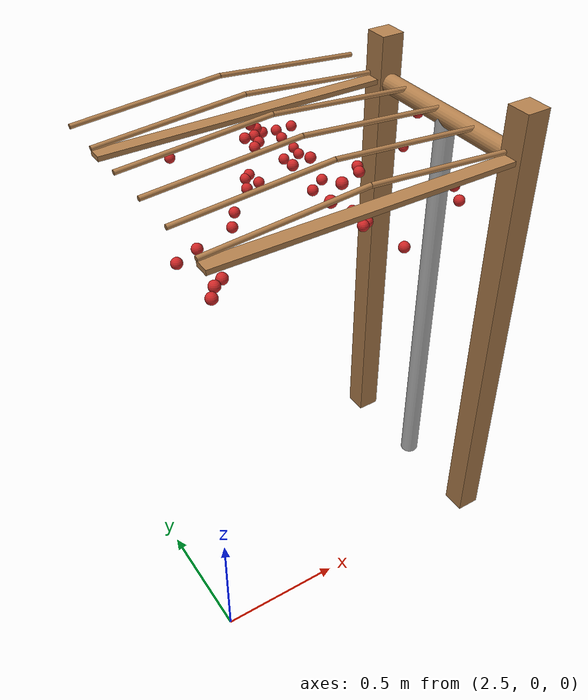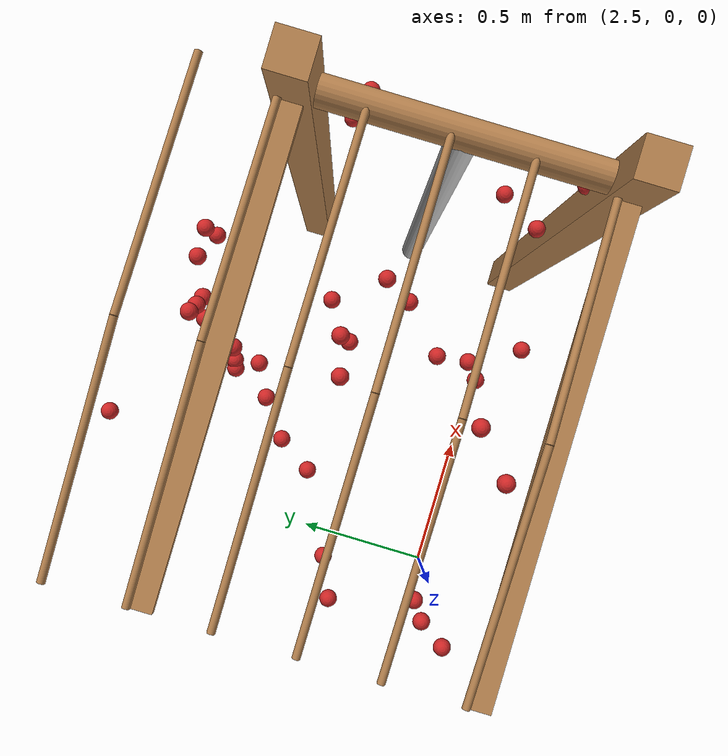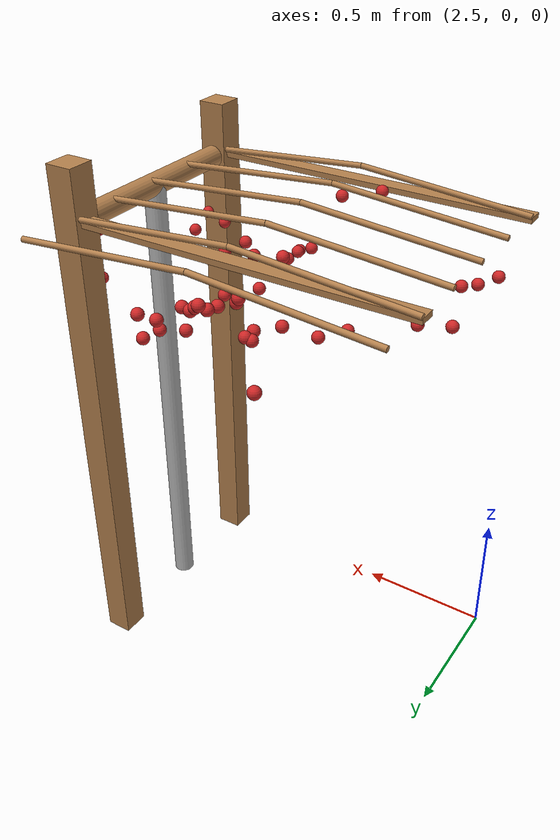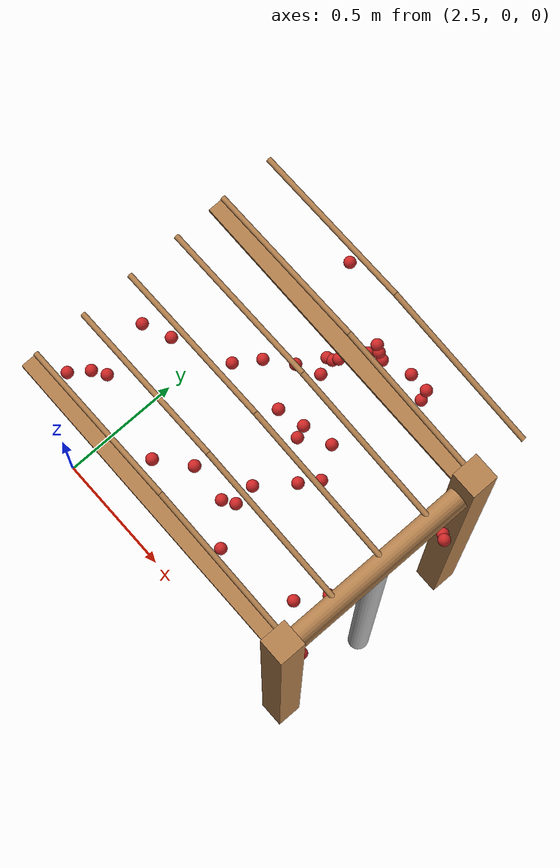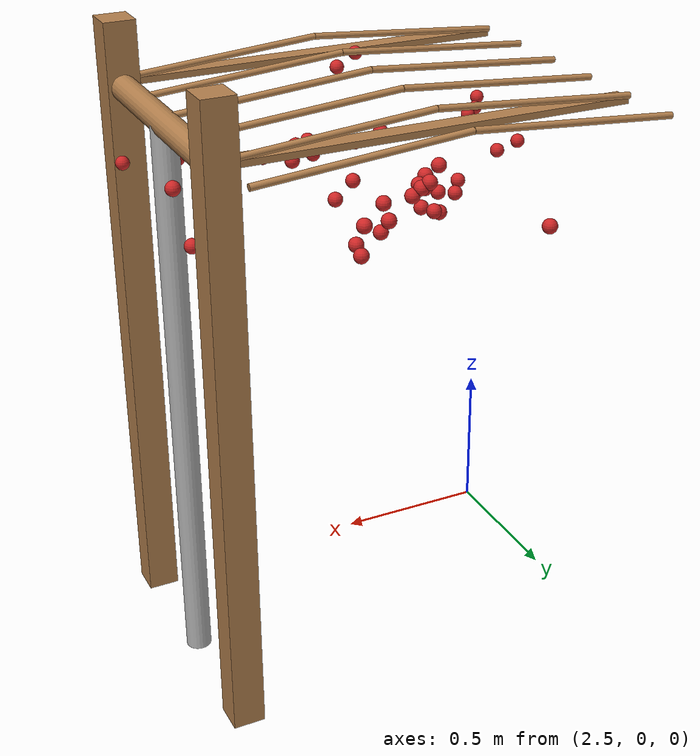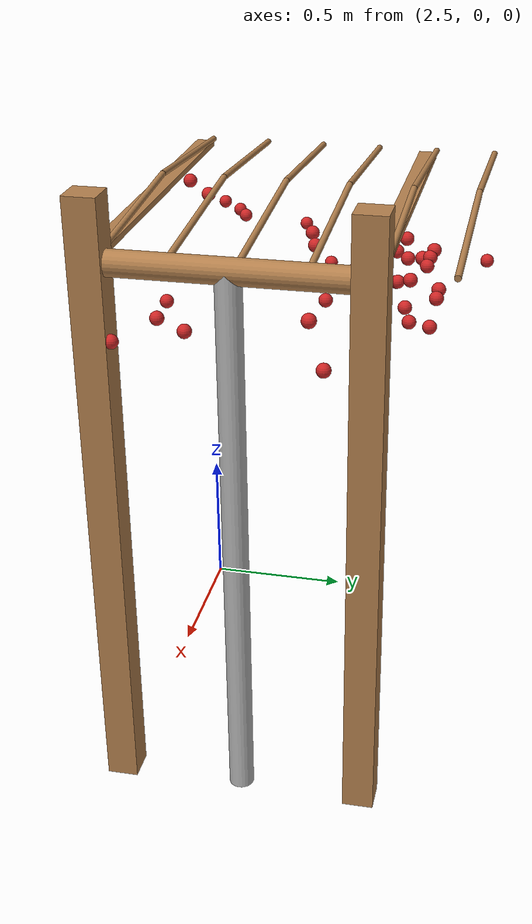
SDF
<sdf version="1.4">
 <model name="pergola">
  <include><name>post_21</name><pose>3.75 0.0 0 0 0 0</pose><uri>model://post</uri></include>
  <include><name>post_22</name><pose>3.75 0.8 0 0 0 0</pose><uri>model://post</uri></include>
  <link name="beam_14">
   <pose>3.125 0.0 1.81 0 0 0</pose>
   <collision name="collision"><geometry><box><size>1.25 0.06 0.02</size></box></geometry></collision>
   <visual name="visual">
    <geometry><box><size>1.25 0.06 0.02</size></box></geometry>
    <material><script><name>Gazebo/Wood</name></script></material>
   </visual>
   <inertial>
    <mass>5</mass>
    <inertia>
     <ixx>0.0016666666666666668</ixx>
     <ixy>0.0</ixy>
     <ixz>0.0</ixz>
     <iyy>0.6525416666666667</iyy>
     <iyz>0.0</iyz>
     <izz>0.6512083333333333</izz>
    </inertia>
   </inertial>
  </link>
  <link name="beam_15">
   <pose>3.125 0.8 1.81 0 0 0</pose>
   <collision name="collision"><geometry><box><size>1.25 0.06 0.02</size></box></geometry></collision>
   <visual name="visual">
    <geometry><box><size>1.25 0.06 0.02</size></box></geometry>
    <material><script><name>Gazebo/Wood</name></script></material>
   </visual>
   <inertial>
    <mass>5</mass>
    <inertia>
     <ixx>0.0016666666666666668</ixx>
     <ixy>0.0</ixy>
     <ixz>0.0</ixz>
     <iyy>0.6525416666666667</iyy>
     <iyz>0.0</iyz>
     <izz>0.6512083333333333</izz>
    </inertia>
   </inertial>
  </link>
  <include><name>tree_18</name><pose>3.75 0.4 0 0 0 0</pose><uri>model://tree_trunk</uri></include>
  <link name="baseBranch_18">
   <pose>3.75 0.4 1.8 1.5707963267948966 0 0</pose>
   <collision name="collision">
    <geometry><cylinder><radius>0.04</radius><length>0.74</length></cylinder></geometry>
   </collision>
   <visual name="visual">
    <geometry><cylinder><radius>0.04</radius><length>0.74</length></cylinder></geometry>
    <material><script><name>Gazebo/WoodFloor</name></script></material>
   </visual>
   <inertial>
    <mass>10</mass>
    <inertia>
     <ixx>0.4603333333333333</ixx>
     <ixy>0.0</ixy>
     <ixz>0.0</ixz>
     <iyy>0.4603333333333333</iyy>
     <iyz>0.0</iyz>
     <izz>0.008</izz>
    </inertia>
   </inertial>
  </link>
  <link name="vine_96">
   <pose>2.8125 0.03 1.85 0 1.4909663410826592 0</pose>
   <collision name="collision">
    <geometry><cylinder><radius>0.01</radius><length>0.6269968101992226</length></cylinder></geometry>
   </collision>
   <visual name="visual">
    <geometry><cylinder><radius>0.01</radius><length>0.6269968101992226</length></cylinder></geometry>
    <material><script><name>Gazebo/WoodFloor</name></script></material>
   </visual>
   <inertial>
    <mass>5</mass>
    <inertia>
     <ixx>0.1639270833333333</ixx>
     <ixy>0.0</ixy>
     <ixz>0.0</ixz>
     <iyy>0.1639270833333333</iyy>
     <iyz>0.0</iyz>
     <izz>0.00025</izz>
    </inertia>
   </inertial>
  </link>
  <link name="vine_97">
   <pose>3.4375 0.03 1.85 0 -1.4909663410826592 0</pose>
   <collision name="collision">
    <geometry><cylinder><radius>0.01</radius><length>0.6269968101992226</length></cylinder></geometry>
   </collision>
   <visual name="visual">
    <geometry><cylinder><radius>0.01</radius><length>0.6269968101992226</length></cylinder></geometry>
    <material><script><name>Gazebo/WoodFloor</name></script></material>
   </visual>
   <inertial>
    <mass>5</mass>
    <inertia>
     <ixx>0.1639270833333333</ixx>
     <ixy>0.0</ixy>
     <ixz>0.0</ixz>
     <iyy>0.1639270833333333</iyy>
     <iyz>0.0</iyz>
     <izz>0.00025</izz>
    </inertia>
   </inertial>
  </link>
  <link name="vine_98">
   <pose>2.8125 0.23 1.85 0 1.4909663410826592 0</pose>
   <collision name="collision">
    <geometry><cylinder><radius>0.01</radius><length>0.6269968101992226</length></cylinder></geometry>
   </collision>
   <visual name="visual">
    <geometry><cylinder><radius>0.01</radius><length>0.6269968101992226</length></cylinder></geometry>
    <material><script><name>Gazebo/WoodFloor</name></script></material>
   </visual>
   <inertial>
    <mass>5</mass>
    <inertia>
     <ixx>0.1639270833333333</ixx>
     <ixy>0.0</ixy>
     <ixz>0.0</ixz>
     <iyy>0.1639270833333333</iyy>
     <iyz>0.0</iyz>
     <izz>0.00025</izz>
    </inertia>
   </inertial>
  </link>
  <link name="vine_99">
   <pose>3.4375 0.23 1.85 0 -1.4909663410826592 0</pose>
   <collision name="collision">
    <geometry><cylinder><radius>0.01</radius><length>0.6269968101992226</length></cylinder></geometry>
   </collision>
   <visual name="visual">
    <geometry><cylinder><radius>0.01</radius><length>0.6269968101992226</length></cylinder></geometry>
    <material><script><name>Gazebo/WoodFloor</name></script></material>
   </visual>
   <inertial>
    <mass>5</mass>
    <inertia>
     <ixx>0.1639270833333333</ixx>
     <ixy>0.0</ixy>
     <ixz>0.0</ixz>
     <iyy>0.1639270833333333</iyy>
     <iyz>0.0</iyz>
     <izz>0.00025</izz>
    </inertia>
   </inertial>
  </link>
  <link name="vine_100">
   <pose>2.8125 0.43000000000000005 1.85 0 1.4909663410826592 0</pose>
   <collision name="collision">
    <geometry><cylinder><radius>0.01</radius><length>0.6269968101992226</length></cylinder></geometry>
   </collision>
   <visual name="visual">
    <geometry><cylinder><radius>0.01</radius><length>0.6269968101992226</length></cylinder></geometry>
    <material><script><name>Gazebo/WoodFloor</name></script></material>
   </visual>
   <inertial>
    <mass>5</mass>
    <inertia>
     <ixx>0.1639270833333333</ixx>
     <ixy>0.0</ixy>
     <ixz>0.0</ixz>
     <iyy>0.1639270833333333</iyy>
     <iyz>0.0</iyz>
     <izz>0.00025</izz>
    </inertia>
   </inertial>
  </link>
  <link name="vine_101">
   <pose>3.4375 0.43000000000000005 1.85 0 -1.4909663410826592 0</pose>
   <collision name="collision">
    <geometry><cylinder><radius>0.01</radius><length>0.6269968101992226</length></cylinder></geometry>
   </collision>
   <visual name="visual">
    <geometry><cylinder><radius>0.01</radius><length>0.6269968101992226</length></cylinder></geometry>
    <material><script><name>Gazebo/WoodFloor</name></script></material>
   </visual>
   <inertial>
    <mass>5</mass>
    <inertia>
     <ixx>0.1639270833333333</ixx>
     <ixy>0.0</ixy>
     <ixz>0.0</ixz>
     <iyy>0.1639270833333333</iyy>
     <iyz>0.0</iyz>
     <izz>0.00025</izz>
    </inertia>
   </inertial>
  </link>
  <link name="vine_102">
   <pose>2.8125 0.6300000000000001 1.85 0 1.4909663410826592 0</pose>
   <collision name="collision">
    <geometry><cylinder><radius>0.01</radius><length>0.6269968101992226</length></cylinder></geometry>
   </collision>
   <visual name="visual">
    <geometry><cylinder><radius>0.01</radius><length>0.6269968101992226</length></cylinder></geometry>
    <material><script><name>Gazebo/WoodFloor</name></script></material>
   </visual>
   <inertial>
    <mass>5</mass>
    <inertia>
     <ixx>0.1639270833333333</ixx>
     <ixy>0.0</ixy>
     <ixz>0.0</ixz>
     <iyy>0.1639270833333333</iyy>
     <iyz>0.0</iyz>
     <izz>0.00025</izz>
    </inertia>
   </inertial>
  </link>
  <link name="vine_103">
   <pose>3.4375 0.6300000000000001 1.85 0 -1.4909663410826592 0</pose>
   <collision name="collision">
    <geometry><cylinder><radius>0.01</radius><length>0.6269968101992226</length></cylinder></geometry>
   </collision>
   <visual name="visual">
    <geometry><cylinder><radius>0.01</radius><length>0.6269968101992226</length></cylinder></geometry>
    <material><script><name>Gazebo/WoodFloor</name></script></material>
   </visual>
   <inertial>
    <mass>5</mass>
    <inertia>
     <ixx>0.1639270833333333</ixx>
     <ixy>0.0</ixy>
     <ixz>0.0</ixz>
     <iyy>0.1639270833333333</iyy>
     <iyz>0.0</iyz>
     <izz>0.00025</izz>
    </inertia>
   </inertial>
  </link>
  <link name="vine_104">
   <pose>2.8125 0.8300000000000001 1.85 0 1.4909663410826592 0</pose>
   <collision name="collision">
    <geometry><cylinder><radius>0.01</radius><length>0.6269968101992226</length></cylinder></geometry>
   </collision>
   <visual name="visual">
    <geometry><cylinder><radius>0.01</radius><length>0.6269968101992226</length></cylinder></geometry>
    <material><script><name>Gazebo/WoodFloor</name></script></material>
   </visual>
   <inertial>
    <mass>5</mass>
    <inertia>
     <ixx>0.1639270833333333</ixx>
     <ixy>0.0</ixy>
     <ixz>0.0</ixz>
     <iyy>0.1639270833333333</iyy>
     <iyz>0.0</iyz>
     <izz>0.00025</izz>
    </inertia>
   </inertial>
  </link>
  <link name="vine_105">
   <pose>3.4375 0.8300000000000001 1.85 0 -1.4909663410826592 0</pose>
   <collision name="collision">
    <geometry><cylinder><radius>0.01</radius><length>0.6269968101992226</length></cylinder></geometry>
   </collision>
   <visual name="visual">
    <geometry><cylinder><radius>0.01</radius><length>0.6269968101992226</length></cylinder></geometry>
    <material><script><name>Gazebo/WoodFloor</name></script></material>
   </visual>
   <inertial>
    <mass>5</mass>
    <inertia>
     <ixx>0.1639270833333333</ixx>
     <ixy>0.0</ixy>
     <ixz>0.0</ixz>
     <iyy>0.1639270833333333</iyy>
     <iyz>0.0</iyz>
     <izz>0.00025</izz>
    </inertia>
   </inertial>
  </link>
  <link name="vine_106">
   <pose>2.8125 1.03 1.85 0 1.4909663410826592 0</pose>
   <collision name="collision">
    <geometry><cylinder><radius>0.01</radius><length>0.6269968101992226</length></cylinder></geometry>
   </collision>
   <visual name="visual">
    <geometry><cylinder><radius>0.01</radius><length>0.6269968101992226</length></cylinder></geometry>
    <material><script><name>Gazebo/WoodFloor</name></script></material>
   </visual>
   <inertial>
    <mass>5</mass>
    <inertia>
     <ixx>0.1639270833333333</ixx>
     <ixy>0.0</ixy>
     <ixz>0.0</ixz>
     <iyy>0.1639270833333333</iyy>
     <iyz>0.0</iyz>
     <izz>0.00025</izz>
    </inertia>
   </inertial>
  </link>
  <link name="vine_107">
   <pose>3.4375 1.03 1.85 0 -1.4909663410826592 0</pose>
   <collision name="collision">
    <geometry><cylinder><radius>0.01</radius><length>0.6269968101992226</length></cylinder></geometry>
   </collision>
   <visual name="visual">
    <geometry><cylinder><radius>0.01</radius><length>0.6269968101992226</length></cylinder></geometry>
    <material><script><name>Gazebo/WoodFloor</name></script></material>
   </visual>
   <inertial>
    <mass>5</mass>
    <inertia>
     <ixx>0.1639270833333333</ixx>
     <ixy>0.0</ixy>
     <ixz>0.0</ixz>
     <iyy>0.1639270833333333</iyy>
     <iyz>0.0</iyz>
     <izz>0.00025</izz>
    </inertia>
   </inertial>
  </link>
  <link name="fruit_65">
   <pose>2.590571079207832 0.3877524559884925 1.5639650991466187 0 0 0</pose>
   <collision name="fruit_collision_65"><geometry><sphere><radius>0.022</radius></sphere></geometry></collision>
   <visual name="visual">
    <geometry><sphere><radius>0.022</radius></sphere></geometry>
    <material><script><name>Gazebo/Red</name></script></material>
   </visual>
   <inertial>
    <mass>0.05</mass>
    <inertia>
     <ixx>9.679999999999999e-06</ixx>
     <ixy>0.0</ixy>
     <ixz>0.0</ixz>
     <iyy>9.679999999999999e-06</iyy>
     <iyz>0.0</iyz>
     <izz>9.679999999999999e-06</izz>
    </inertia>
   </inertial>
   <sensor name="fruit_contact_65" type="contact">
    <plugin name="contact_plugin_65" filename="libcontact_plugin.so"/>
    <contact><collision>fruit_collision_65</collision><topic>fruit_contact_topic_65</topic></contact>
   </sensor>
  </link>
  <link name="fruit_81">
   <pose>3.7831133298930375 0.6755888730736721 1.540852940966404 0 0 0</pose>
   <collision name="fruit_collision_81"><geometry><sphere><radius>0.022</radius></sphere></geometry></collision>
   <visual name="visual">
    <geometry><sphere><radius>0.022</radius></sphere></geometry>
    <material><script><name>Gazebo/Red</name></script></material>
   </visual>
   <inertial>
    <mass>0.05</mass>
    <inertia>
     <ixx>9.679999999999999e-06</ixx>
     <ixy>0.0</ixy>
     <ixz>0.0</ixz>
     <iyy>9.679999999999999e-06</iyy>
     <iyz>0.0</iyz>
     <izz>9.679999999999999e-06</izz>
    </inertia>
   </inertial>
   <sensor name="fruit_contact_81" type="contact">
    <plugin name="contact_plugin_81" filename="libcontact_plugin.so"/>
    <contact><collision>fruit_collision_81</collision><topic>fruit_contact_topic_81</topic></contact>
   </sensor>
  </link>
  <link name="fruit_82">
   <pose>3.1331316718004825 0.7856074994383275 1.672531141960001 0 0 0</pose>
   <collision name="fruit_collision_82"><geometry><sphere><radius>0.022</radius></sphere></geometry></collision>
   <visual name="visual">
    <geometry><sphere><radius>0.022</radius></sphere></geometry>
    <material><script><name>Gazebo/Red</name></script></material>
   </visual>
   <inertial>
    <mass>0.05</mass>
    <inertia>
     <ixx>9.679999999999999e-06</ixx>
     <ixy>0.0</ixy>
     <ixz>0.0</ixz>
     <iyy>9.679999999999999e-06</iyy>
     <iyz>0.0</iyz>
     <izz>9.679999999999999e-06</izz>
    </inertia>
   </inertial>
   <sensor name="fruit_contact_82" type="contact">
    <plugin name="contact_plugin_82" filename="libcontact_plugin.so"/>
    <contact><collision>fruit_collision_82</collision><topic>fruit_contact_topic_82</topic></contact>
   </sensor>
  </link>
  <link name="fruit_110">
   <pose>3.226208982842789 0.19145294326451873 1.6034198569332494 0 0 0</pose>
   <collision name="fruit_collision_110"><geometry><sphere><radius>0.022</radius></sphere></geometry></collision>
   <visual name="visual">
    <geometry><sphere><radius>0.022</radius></sphere></geometry>
    <material><script><name>Gazebo/Red</name></script></material>
   </visual>
   <inertial>
    <mass>0.05</mass>
    <inertia>
     <ixx>9.679999999999999e-06</ixx>
     <ixy>0.0</ixy>
     <ixz>0.0</ixz>
     <iyy>9.679999999999999e-06</iyy>
     <iyz>0.0</iyz>
     <izz>9.679999999999999e-06</izz>
    </inertia>
   </inertial>
   <sensor name="fruit_contact_110" type="contact">
    <plugin name="contact_plugin_110" filename="libcontact_plugin.so"/>
    <contact><collision>fruit_collision_110</collision><topic>fruit_contact_topic_110</topic></contact>
   </sensor>
  </link>
  <link name="fruit_113">
   <pose>3.1378845482266486 0.5168235719030183 1.7173349312151678 0 0 0</pose>
   <collision name="fruit_collision_113"><geometry><sphere><radius>0.022</radius></sphere></geometry></collision>
   <visual name="visual">
    <geometry><sphere><radius>0.022</radius></sphere></geometry>
    <material><script><name>Gazebo/Red</name></script></material>
   </visual>
   <inertial>
    <mass>0.05</mass>
    <inertia>
     <ixx>9.679999999999999e-06</ixx>
     <ixy>0.0</ixy>
     <ixz>0.0</ixz>
     <iyy>9.679999999999999e-06</iyy>
     <iyz>0.0</iyz>
     <izz>9.679999999999999e-06</izz>
    </inertia>
   </inertial>
   <sensor name="fruit_contact_113" type="contact">
    <plugin name="contact_plugin_113" filename="libcontact_plugin.so"/>
    <contact><collision>fruit_collision_113</collision><topic>fruit_contact_topic_113</topic></contact>
   </sensor>
  </link>
  <link name="fruit_134">
   <pose>3.358640328855496 0.40842331911544494 1.6758174487829034 0 0 0</pose>
   <collision name="fruit_collision_134"><geometry><sphere><radius>0.022</radius></sphere></geometry></collision>
   <visual name="visual">
    <geometry><sphere><radius>0.022</radius></sphere></geometry>
    <material><script><name>Gazebo/Red</name></script></material>
   </visual>
   <inertial>
    <mass>0.05</mass>
    <inertia>
     <ixx>9.679999999999999e-06</ixx>
     <ixy>0.0</ixy>
     <ixz>0.0</ixz>
     <iyy>9.679999999999999e-06</iyy>
     <iyz>0.0</iyz>
     <izz>9.679999999999999e-06</izz>
    </inertia>
   </inertial>
   <sensor name="fruit_contact_134" type="contact">
    <plugin name="contact_plugin_134" filename="libcontact_plugin.so"/>
    <contact><collision>fruit_collision_134</collision><topic>fruit_contact_topic_134</topic></contact>
   </sensor>
  </link>
  <link name="fruit_143">
   <pose>3.2291554791871295 0.5207104003490342 1.5823964703827582 0 0 0</pose>
   <collision name="fruit_collision_143"><geometry><sphere><radius>0.022</radius></sphere></geometry></collision>
   <visual name="visual">
    <geometry><sphere><radius>0.022</radius></sphere></geometry>
    <material><script><name>Gazebo/Red</name></script></material>
   </visual>
   <inertial>
    <mass>0.05</mass>
    <inertia>
     <ixx>9.679999999999999e-06</ixx>
     <ixy>0.0</ixy>
     <ixz>0.0</ixz>
     <iyy>9.679999999999999e-06</iyy>
     <iyz>0.0</iyz>
     <izz>9.679999999999999e-06</izz>
    </inertia>
   </inertial>
   <sensor name="fruit_contact_143" type="contact">
    <plugin name="contact_plugin_143" filename="libcontact_plugin.so"/>
    <contact><collision>fruit_collision_143</collision><topic>fruit_contact_topic_143</topic></contact>
   </sensor>
  </link>
  <link name="fruit_144">
   <pose>3.7780074979215748 0.05848832995032796 1.5737225013563318 0 0 0</pose>
   <collision name="fruit_collision_144"><geometry><sphere><radius>0.022</radius></sphere></geometry></collision>
   <visual name="visual">
    <geometry><sphere><radius>0.022</radius></sphere></geometry>
    <material><script><name>Gazebo/Red</name></script></material>
   </visual>
   <inertial>
    <mass>0.05</mass>
    <inertia>
     <ixx>9.679999999999999e-06</ixx>
     <ixy>0.0</ixy>
     <ixz>0.0</ixz>
     <iyy>9.679999999999999e-06</iyy>
     <iyz>0.0</iyz>
     <izz>9.679999999999999e-06</izz>
    </inertia>
   </inertial>
   <sensor name="fruit_contact_144" type="contact">
    <plugin name="contact_plugin_144" filename="libcontact_plugin.so"/>
    <contact><collision>fruit_collision_144</collision><topic>fruit_contact_topic_144</topic></contact>
   </sensor>
  </link>
  <link name="fruit_149">
   <pose>3.3371397993738388 0.09027333356100306 1.530018991895574 0 0 0</pose>
   <collision name="fruit_collision_149"><geometry><sphere><radius>0.022</radius></sphere></geometry></collision>
   <visual name="visual">
    <geometry><sphere><radius>0.022</radius></sphere></geometry>
    <material><script><name>Gazebo/Red</name></script></material>
   </visual>
   <inertial>
    <mass>0.05</mass>
    <inertia>
     <ixx>9.679999999999999e-06</ixx>
     <ixy>0.0</ixy>
     <ixz>0.0</ixz>
     <iyy>9.679999999999999e-06</iyy>
     <iyz>0.0</iyz>
     <izz>9.679999999999999e-06</izz>
    </inertia>
   </inertial>
   <sensor name="fruit_contact_149" type="contact">
    <plugin name="contact_plugin_149" filename="libcontact_plugin.so"/>
    <contact><collision>fruit_collision_149</collision><topic>fruit_contact_topic_149</topic></contact>
   </sensor>
  </link>
  <link name="fruit_195">
   <pose>2.8844510350829466 0.5314316082532929 1.5300732035829248 0 0 0</pose>
   <collision name="fruit_collision_195"><geometry><sphere><radius>0.022</radius></sphere></geometry></collision>
   <visual name="visual">
    <geometry><sphere><radius>0.022</radius></sphere></geometry>
    <material><script><name>Gazebo/Red</name></script></material>
   </visual>
   <inertial>
    <mass>0.05</mass>
    <inertia>
     <ixx>9.679999999999999e-06</ixx>
     <ixy>0.0</ixy>
     <ixz>0.0</ixz>
     <iyy>9.679999999999999e-06</iyy>
     <iyz>0.0</iyz>
     <izz>9.679999999999999e-06</izz>
    </inertia>
   </inertial>
   <sensor name="fruit_contact_195" type="contact">
    <plugin name="contact_plugin_195" filename="libcontact_plugin.so"/>
    <contact><collision>fruit_collision_195</collision><topic>fruit_contact_topic_195</topic></contact>
   </sensor>
  </link>
  <link name="fruit_201">
   <pose>3.633220118924942 0.15106249841996397 1.595178722564156 0 0 0</pose>
   <collision name="fruit_collision_201"><geometry><sphere><radius>0.022</radius></sphere></geometry></collision>
   <visual name="visual">
    <geometry><sphere><radius>0.022</radius></sphere></geometry>
    <material><script><name>Gazebo/Red</name></script></material>
   </visual>
   <inertial>
    <mass>0.05</mass>
    <inertia>
     <ixx>9.679999999999999e-06</ixx>
     <ixy>0.0</ixy>
     <ixz>0.0</ixz>
     <iyy>9.679999999999999e-06</iyy>
     <iyz>0.0</iyz>
     <izz>9.679999999999999e-06</izz>
    </inertia>
   </inertial>
   <sensor name="fruit_contact_201" type="contact">
    <plugin name="contact_plugin_201" filename="libcontact_plugin.so"/>
    <contact><collision>fruit_collision_201</collision><topic>fruit_contact_topic_201</topic></contact>
   </sensor>
  </link>
  <link name="fruit_236">
   <pose>2.5666186248098324 0.08487740415534858 1.617987822720674 0 0 0</pose>
   <collision name="fruit_collision_236"><geometry><sphere><radius>0.022</radius></sphere></geometry></collision>
   <visual name="visual">
    <geometry><sphere><radius>0.022</radius></sphere></geometry>
    <material><script><name>Gazebo/Red</name></script></material>
   </visual>
   <inertial>
    <mass>0.05</mass>
    <inertia>
     <ixx>9.679999999999999e-06</ixx>
     <ixy>0.0</ixy>
     <ixz>0.0</ixz>
     <iyy>9.679999999999999e-06</iyy>
     <iyz>0.0</iyz>
     <izz>9.679999999999999e-06</izz>
    </inertia>
   </inertial>
   <sensor name="fruit_contact_236" type="contact">
    <plugin name="contact_plugin_236" filename="libcontact_plugin.so"/>
    <contact><collision>fruit_collision_236</collision><topic>fruit_contact_topic_236</topic></contact>
   </sensor>
  </link>
  <link name="fruit_277">
   <pose>3.294067303609166 0.8495686240333603 1.6405021176779784 0 0 0</pose>
   <collision name="fruit_collision_277"><geometry><sphere><radius>0.022</radius></sphere></geometry></collision>
   <visual name="visual">
    <geometry><sphere><radius>0.022</radius></sphere></geometry>
    <material><script><name>Gazebo/Red</name></script></material>
   </visual>
   <inertial>
    <mass>0.05</mass>
    <inertia>
     <ixx>9.679999999999999e-06</ixx>
     <ixy>0.0</ixy>
     <ixz>0.0</ixz>
     <iyy>9.679999999999999e-06</iyy>
     <iyz>0.0</iyz>
     <izz>9.679999999999999e-06</izz>
    </inertia>
   </inertial>
   <sensor name="fruit_contact_277" type="contact">
    <plugin name="contact_plugin_277" filename="libcontact_plugin.so"/>
    <contact><collision>fruit_collision_277</collision><topic>fruit_contact_topic_277</topic></contact>
   </sensor>
  </link>
  <link name="fruit_297">
   <pose>3.0350619761326287 0.6828111356538656 1.5707028544863624 0 0 0</pose>
   <collision name="fruit_collision_297"><geometry><sphere><radius>0.022</radius></sphere></geometry></collision>
   <visual name="visual">
    <geometry><sphere><radius>0.022</radius></sphere></geometry>
    <material><script><name>Gazebo/Red</name></script></material>
   </visual>
   <inertial>
    <mass>0.05</mass>
    <inertia>
     <ixx>9.679999999999999e-06</ixx>
     <ixy>0.0</ixy>
     <ixz>0.0</ixz>
     <iyy>9.679999999999999e-06</iyy>
     <iyz>0.0</iyz>
     <izz>9.679999999999999e-06</izz>
    </inertia>
   </inertial>
   <sensor name="fruit_contact_297" type="contact">
    <plugin name="contact_plugin_297" filename="libcontact_plugin.so"/>
    <contact><collision>fruit_collision_297</collision><topic>fruit_contact_topic_297</topic></contact>
   </sensor>
  </link>
  <link name="fruit_300">
   <pose>3.1059222904072925 0.8124904888042598 1.7063775814071853 0 0 0</pose>
   <collision name="fruit_collision_300"><geometry><sphere><radius>0.022</radius></sphere></geometry></collision>
   <visual name="visual">
    <geometry><sphere><radius>0.022</radius></sphere></geometry>
    <material><script><name>Gazebo/Red</name></script></material>
   </visual>
   <inertial>
    <mass>0.05</mass>
    <inertia>
     <ixx>9.679999999999999e-06</ixx>
     <ixy>0.0</ixy>
     <ixz>0.0</ixz>
     <iyy>9.679999999999999e-06</iyy>
     <iyz>0.0</iyz>
     <izz>9.679999999999999e-06</izz>
    </inertia>
   </inertial>
   <sensor name="fruit_contact_300" type="contact">
    <plugin name="contact_plugin_300" filename="libcontact_plugin.so"/>
    <contact><collision>fruit_collision_300</collision><topic>fruit_contact_topic_300</topic></contact>
   </sensor>
  </link>
  <link name="fruit_310">
   <pose>3.0123805505623085 0.087054675354609 1.8232168870021188 0 0 0</pose>
   <collision name="fruit_collision_310"><geometry><sphere><radius>0.022</radius></sphere></geometry></collision>
   <visual name="visual">
    <geometry><sphere><radius>0.022</radius></sphere></geometry>
    <material><script><name>Gazebo/Red</name></script></material>
   </visual>
   <inertial>
    <mass>0.05</mass>
    <inertia>
     <ixx>9.679999999999999e-06</ixx>
     <ixy>0.0</ixy>
     <ixz>0.0</ixz>
     <iyy>9.679999999999999e-06</iyy>
     <iyz>0.0</iyz>
     <izz>9.679999999999999e-06</izz>
    </inertia>
   </inertial>
   <sensor name="fruit_contact_310" type="contact">
    <plugin name="contact_plugin_310" filename="libcontact_plugin.so"/>
    <contact><collision>fruit_collision_310</collision><topic>fruit_contact_topic_310</topic></contact>
   </sensor>
  </link>
  <link name="fruit_319">
   <pose>3.8146049050625015 0.6397821348046515 1.698858095045144 0 0 0</pose>
   <collision name="fruit_collision_319"><geometry><sphere><radius>0.022</radius></sphere></geometry></collision>
   <visual name="visual">
    <geometry><sphere><radius>0.022</radius></sphere></geometry>
    <material><script><name>Gazebo/Red</name></script></material>
   </visual>
   <inertial>
    <mass>0.05</mass>
    <inertia>
     <ixx>9.679999999999999e-06</ixx>
     <ixy>0.0</ixy>
     <ixz>0.0</ixz>
     <iyy>9.679999999999999e-06</iyy>
     <iyz>0.0</iyz>
     <izz>9.679999999999999e-06</izz>
    </inertia>
   </inertial>
   <sensor name="fruit_contact_319" type="contact">
    <plugin name="contact_plugin_319" filename="libcontact_plugin.so"/>
    <contact><collision>fruit_collision_319</collision><topic>fruit_contact_topic_319</topic></contact>
   </sensor>
  </link>
  <link name="fruit_320">
   <pose>3.29533115842445 0.8359192733388549 1.5511672968368517 0 0 0</pose>
   <collision name="fruit_collision_320"><geometry><sphere><radius>0.022</radius></sphere></geometry></collision>
   <visual name="visual">
    <geometry><sphere><radius>0.022</radius></sphere></geometry>
    <material><script><name>Gazebo/Red</name></script></material>
   </visual>
   <inertial>
    <mass>0.05</mass>
    <inertia>
     <ixx>9.679999999999999e-06</ixx>
     <ixy>0.0</ixy>
     <ixz>0.0</ixz>
     <iyy>9.679999999999999e-06</iyy>
     <iyz>0.0</iyz>
     <izz>9.679999999999999e-06</izz>
    </inertia>
   </inertial>
   <sensor name="fruit_contact_320" type="contact">
    <plugin name="contact_plugin_320" filename="libcontact_plugin.so"/>
    <contact><collision>fruit_collision_320</collision><topic>fruit_contact_topic_320</topic></contact>
   </sensor>
  </link>
  <link name="fruit_323">
   <pose>2.889919372783523 1.0519377325173072 1.5748619771571282 0 0 0</pose>
   <collision name="fruit_collision_323"><geometry><sphere><radius>0.022</radius></sphere></geometry></collision>
   <visual name="visual">
    <geometry><sphere><radius>0.022</radius></sphere></geometry>
    <material><script><name>Gazebo/Red</name></script></material>
   </visual>
   <inertial>
    <mass>0.05</mass>
    <inertia>
     <ixx>9.679999999999999e-06</ixx>
     <ixy>0.0</ixy>
     <ixz>0.0</ixz>
     <iyy>9.679999999999999e-06</iyy>
     <iyz>0.0</iyz>
     <izz>9.679999999999999e-06</izz>
    </inertia>
   </inertial>
   <sensor name="fruit_contact_323" type="contact">
    <plugin name="contact_plugin_323" filename="libcontact_plugin.so"/>
    <contact><collision>fruit_collision_323</collision><topic>fruit_contact_topic_323</topic></contact>
   </sensor>
  </link>
  <link name="fruit_371">
   <pose>3.3994285774156334 0.4749247549612544 1.6556707716469352 0 0 0</pose>
   <collision name="fruit_collision_371"><geometry><sphere><radius>0.022</radius></sphere></geometry></collision>
   <visual name="visual">
    <geometry><sphere><radius>0.022</radius></sphere></geometry>
    <material><script><name>Gazebo/Red</name></script></material>
   </visual>
   <inertial>
    <mass>0.05</mass>
    <inertia>
     <ixx>9.679999999999999e-06</ixx>
     <ixy>0.0</ixy>
     <ixz>0.0</ixz>
     <iyy>9.679999999999999e-06</iyy>
     <iyz>0.0</iyz>
     <izz>9.679999999999999e-06</izz>
    </inertia>
   </inertial>
   <sensor name="fruit_contact_371" type="contact">
    <plugin name="contact_plugin_371" filename="libcontact_plugin.so"/>
    <contact><collision>fruit_collision_371</collision><topic>fruit_contact_topic_371</topic></contact>
   </sensor>
  </link>
  <link name="fruit_380">
   <pose>3.3971789548590112 0.9246488696341527 1.5350215578573019 0 0 0</pose>
   <collision name="fruit_collision_380"><geometry><sphere><radius>0.022</radius></sphere></geometry></collision>
   <visual name="visual">
    <geometry><sphere><radius>0.022</radius></sphere></geometry>
    <material><script><name>Gazebo/Red</name></script></material>
   </visual>
   <inertial>
    <mass>0.05</mass>
    <inertia>
     <ixx>9.679999999999999e-06</ixx>
     <ixy>0.0</ixy>
     <ixz>0.0</ixz>
     <iyy>9.679999999999999e-06</iyy>
     <iyz>0.0</iyz>
     <izz>9.679999999999999e-06</izz>
    </inertia>
   </inertial>
   <sensor name="fruit_contact_380" type="contact">
    <plugin name="contact_plugin_380" filename="libcontact_plugin.so"/>
    <contact><collision>fruit_collision_380</collision><topic>fruit_contact_topic_380</topic></contact>
   </sensor>
  </link>
  <link name="fruit_384">
   <pose>2.690326269322643 0.43076494650874686 1.5620613622059942 0 0 0</pose>
   <collision name="fruit_collision_384"><geometry><sphere><radius>0.022</radius></sphere></geometry></collision>
   <visual name="visual">
    <geometry><sphere><radius>0.022</radius></sphere></geometry>
    <material><script><name>Gazebo/Red</name></script></material>
   </visual>
   <inertial>
    <mass>0.05</mass>
    <inertia>
     <ixx>9.679999999999999e-06</ixx>
     <ixy>0.0</ixy>
     <ixz>0.0</ixz>
     <iyy>9.679999999999999e-06</iyy>
     <iyz>0.0</iyz>
     <izz>9.679999999999999e-06</izz>
    </inertia>
   </inertial>
   <sensor name="fruit_contact_384" type="contact">
    <plugin name="contact_plugin_384" filename="libcontact_plugin.so"/>
    <contact><collision>fruit_collision_384</collision><topic>fruit_contact_topic_384</topic></contact>
   </sensor>
  </link>
  <link name="fruit_391">
   <pose>3.180383280599209 0.8709178322850342 1.6723215678189 0 0 0</pose>
   <collision name="fruit_collision_391"><geometry><sphere><radius>0.022</radius></sphere></geometry></collision>
   <visual name="visual">
    <geometry><sphere><radius>0.022</radius></sphere></geometry>
    <material><script><name>Gazebo/Red</name></script></material>
   </visual>
   <inertial>
    <mass>0.05</mass>
    <inertia>
     <ixx>9.679999999999999e-06</ixx>
     <ixy>0.0</ixy>
     <ixz>0.0</ixz>
     <iyy>9.679999999999999e-06</iyy>
     <iyz>0.0</iyz>
     <izz>9.679999999999999e-06</izz>
    </inertia>
   </inertial>
   <sensor name="fruit_contact_391" type="contact">
    <plugin name="contact_plugin_391" filename="libcontact_plugin.so"/>
    <contact><collision>fruit_collision_391</collision><topic>fruit_contact_topic_391</topic></contact>
   </sensor>
  </link>
  <link name="fruit_394">
   <pose>3.695213783114329 0.2516656726318858 1.5875224404980595 0 0 0</pose>
   <collision name="fruit_collision_394"><geometry><sphere><radius>0.022</radius></sphere></geometry></collision>
   <visual name="visual">
    <geometry><sphere><radius>0.022</radius></sphere></geometry>
    <material><script><name>Gazebo/Red</name></script></material>
   </visual>
   <inertial>
    <mass>0.05</mass>
    <inertia>
     <ixx>9.679999999999999e-06</ixx>
     <ixy>0.0</ixy>
     <ixz>0.0</ixz>
     <iyy>9.679999999999999e-06</iyy>
     <iyz>0.0</iyz>
     <izz>9.679999999999999e-06</izz>
    </inertia>
   </inertial>
   <sensor name="fruit_contact_394" type="contact">
    <plugin name="contact_plugin_394" filename="libcontact_plugin.so"/>
    <contact><collision>fruit_collision_394</collision><topic>fruit_contact_topic_394</topic></contact>
   </sensor>
  </link>
  <link name="fruit_428">
   <pose>3.1847956551330427 0.9070171188108898 1.7018100503883538 0 0 0</pose>
   <collision name="fruit_collision_428"><geometry><sphere><radius>0.022</radius></sphere></geometry></collision>
   <visual name="visual">
    <geometry><sphere><radius>0.022</radius></sphere></geometry>
    <material><script><name>Gazebo/Red</name></script></material>
   </visual>
   <inertial>
    <mass>0.05</mass>
    <inertia>
     <ixx>9.679999999999999e-06</ixx>
     <ixy>0.0</ixy>
     <ixz>0.0</ixz>
     <iyy>9.679999999999999e-06</iyy>
     <iyz>0.0</iyz>
     <izz>9.679999999999999e-06</izz>
    </inertia>
   </inertial>
   <sensor name="fruit_contact_428" type="contact">
    <plugin name="contact_plugin_428" filename="libcontact_plugin.so"/>
    <contact><collision>fruit_collision_428</collision><topic>fruit_contact_topic_428</topic></contact>
   </sensor>
  </link>
  <link name="fruit_434">
   <pose>2.9421944487830025 0.6176922899283025 1.5293574013002602 0 0 0</pose>
   <collision name="fruit_collision_434"><geometry><sphere><radius>0.022</radius></sphere></geometry></collision>
   <visual name="visual">
    <geometry><sphere><radius>0.022</radius></sphere></geometry>
    <material><script><name>Gazebo/Red</name></script></material>
   </visual>
   <inertial>
    <mass>0.05</mass>
    <inertia>
     <ixx>9.679999999999999e-06</ixx>
     <ixy>0.0</ixy>
     <ixz>0.0</ixz>
     <iyy>9.679999999999999e-06</iyy>
     <iyz>0.0</iyz>
     <izz>9.679999999999999e-06</izz>
    </inertia>
   </inertial>
   <sensor name="fruit_contact_434" type="contact">
    <plugin name="contact_plugin_434" filename="libcontact_plugin.so"/>
    <contact><collision>fruit_collision_434</collision><topic>fruit_contact_topic_434</topic></contact>
   </sensor>
  </link>
  <link name="fruit_460">
   <pose>3.381614332898184 0.8604145843240654 1.53966468432946 0 0 0</pose>
   <collision name="fruit_collision_460"><geometry><sphere><radius>0.022</radius></sphere></geometry></collision>
   <visual name="visual">
    <geometry><sphere><radius>0.022</radius></sphere></geometry>
    <material><script><name>Gazebo/Red</name></script></material>
   </visual>
   <inertial>
    <mass>0.05</mass>
    <inertia>
     <ixx>9.679999999999999e-06</ixx>
     <ixy>0.0</ixy>
     <ixz>0.0</ixz>
     <iyy>9.679999999999999e-06</iyy>
     <iyz>0.0</iyz>
     <izz>9.679999999999999e-06</izz>
    </inertia>
   </inertial>
   <sensor name="fruit_contact_460" type="contact">
    <plugin name="contact_plugin_460" filename="libcontact_plugin.so"/>
    <contact><collision>fruit_collision_460</collision><topic>fruit_contact_topic_460</topic></contact>
   </sensor>
  </link>
  <link name="fruit_467">
   <pose>2.655695239602206 0.1817137343830017 1.6008163343330535 0 0 0</pose>
   <collision name="fruit_collision_467"><geometry><sphere><radius>0.022</radius></sphere></geometry></collision>
   <visual name="visual">
    <geometry><sphere><radius>0.022</radius></sphere></geometry>
    <material><script><name>Gazebo/Red</name></script></material>
   </visual>
   <inertial>
    <mass>0.05</mass>
    <inertia>
     <ixx>9.679999999999999e-06</ixx>
     <ixy>0.0</ixy>
     <ixz>0.0</ixz>
     <iyy>9.679999999999999e-06</iyy>
     <iyz>0.0</iyz>
     <izz>9.679999999999999e-06</izz>
    </inertia>
   </inertial>
   <sensor name="fruit_contact_467" type="contact">
    <plugin name="contact_plugin_467" filename="libcontact_plugin.so"/>
    <contact><collision>fruit_collision_467</collision><topic>fruit_contact_topic_467</topic></contact>
   </sensor>
  </link>
  <link name="fruit_481">
   <pose>3.3961650928411258 0.9409287341210764 1.6271318934639054 0 0 0</pose>
   <collision name="fruit_collision_481"><geometry><sphere><radius>0.022</radius></sphere></geometry></collision>
   <visual name="visual">
    <geometry><sphere><radius>0.022</radius></sphere></geometry>
    <material><script><name>Gazebo/Red</name></script></material>
   </visual>
   <inertial>
    <mass>0.05</mass>
    <inertia>
     <ixx>9.679999999999999e-06</ixx>
     <ixy>0.0</ixy>
     <ixz>0.0</ixz>
     <iyy>9.679999999999999e-06</iyy>
     <iyz>0.0</iyz>
     <izz>9.679999999999999e-06</izz>
    </inertia>
   </inertial>
   <sensor name="fruit_contact_481" type="contact">
    <plugin name="contact_plugin_481" filename="libcontact_plugin.so"/>
    <contact><collision>fruit_collision_481</collision><topic>fruit_contact_topic_481</topic></contact>
   </sensor>
  </link>
  <link name="fruit_505">
   <pose>3.2285541020340225 0.8916407562558777 1.6651005974441841 0 0 0</pose>
   <collision name="fruit_collision_505"><geometry><sphere><radius>0.022</radius></sphere></geometry></collision>
   <visual name="visual">
    <geometry><sphere><radius>0.022</radius></sphere></geometry>
    <material><script><name>Gazebo/Red</name></script></material>
   </visual>
   <inertial>
    <mass>0.05</mass>
    <inertia>
     <ixx>9.679999999999999e-06</ixx>
     <ixy>0.0</ixy>
     <ixz>0.0</ixz>
     <iyy>9.679999999999999e-06</iyy>
     <iyz>0.0</iyz>
     <izz>9.679999999999999e-06</izz>
    </inertia>
   </inertial>
   <sensor name="fruit_contact_505" type="contact">
    <plugin name="contact_plugin_505" filename="libcontact_plugin.so"/>
    <contact><collision>fruit_collision_505</collision><topic>fruit_contact_topic_505</topic></contact>
   </sensor>
  </link>
  <link name="fruit_513">
   <pose>3.204997627500052 0.8976753409215783 1.6855975326524941 0 0 0</pose>
   <collision name="fruit_collision_513"><geometry><sphere><radius>0.022</radius></sphere></geometry></collision>
   <visual name="visual">
    <geometry><sphere><radius>0.022</radius></sphere></geometry>
    <material><script><name>Gazebo/Red</name></script></material>
   </visual>
   <inertial>
    <mass>0.05</mass>
    <inertia>
     <ixx>9.679999999999999e-06</ixx>
     <ixy>0.0</ixy>
     <ixz>0.0</ixz>
     <iyy>9.679999999999999e-06</iyy>
     <iyz>0.0</iyz>
     <izz>9.679999999999999e-06</izz>
    </inertia>
   </inertial>
   <sensor name="fruit_contact_513" type="contact">
    <plugin name="contact_plugin_513" filename="libcontact_plugin.so"/>
    <contact><collision>fruit_collision_513</collision><topic>fruit_contact_topic_513</topic></contact>
   </sensor>
  </link>
  <link name="fruit_519">
   <pose>3.1038236720494736 0.7868058320410218 1.5609431443278108 0 0 0</pose>
   <collision name="fruit_collision_519"><geometry><sphere><radius>0.022</radius></sphere></geometry></collision>
   <visual name="visual">
    <geometry><sphere><radius>0.022</radius></sphere></geometry>
    <material><script><name>Gazebo/Red</name></script></material>
   </visual>
   <inertial>
    <mass>0.05</mass>
    <inertia>
     <ixx>9.679999999999999e-06</ixx>
     <ixy>0.0</ixy>
     <ixz>0.0</ixz>
     <iyy>9.679999999999999e-06</iyy>
     <iyz>0.0</iyz>
     <izz>9.679999999999999e-06</izz>
    </inertia>
   </inertial>
   <sensor name="fruit_contact_519" type="contact">
    <plugin name="contact_plugin_519" filename="libcontact_plugin.so"/>
    <contact><collision>fruit_collision_519</collision><topic>fruit_contact_topic_519</topic></contact>
   </sensor>
  </link>
  <link name="fruit_545">
   <pose>3.117241072381342 0.1763070084200531 1.8148626934384786 0 0 0</pose>
   <collision name="fruit_collision_545"><geometry><sphere><radius>0.022</radius></sphere></geometry></collision>
   <visual name="visual">
    <geometry><sphere><radius>0.022</radius></sphere></geometry>
    <material><script><name>Gazebo/Red</name></script></material>
   </visual>
   <inertial>
    <mass>0.05</mass>
    <inertia>
     <ixx>9.679999999999999e-06</ixx>
     <ixy>0.0</ixy>
     <ixz>0.0</ixz>
     <iyy>9.679999999999999e-06</iyy>
     <iyz>0.0</iyz>
     <izz>9.679999999999999e-06</izz>
    </inertia>
   </inertial>
   <sensor name="fruit_contact_545" type="contact">
    <plugin name="contact_plugin_545" filename="libcontact_plugin.so"/>
    <contact><collision>fruit_collision_545</collision><topic>fruit_contact_topic_545</topic></contact>
   </sensor>
  </link>
  <link name="fruit_576">
   <pose>3.256680858796092 0.2997978251000598 1.596938883230844 0 0 0</pose>
   <collision name="fruit_collision_576"><geometry><sphere><radius>0.022</radius></sphere></geometry></collision>
   <visual name="visual">
    <geometry><sphere><radius>0.022</radius></sphere></geometry>
    <material><script><name>Gazebo/Red</name></script></material>
   </visual>
   <inertial>
    <mass>0.05</mass>
    <inertia>
     <ixx>9.679999999999999e-06</ixx>
     <ixy>0.0</ixy>
     <ixz>0.0</ixz>
     <iyy>9.679999999999999e-06</iyy>
     <iyz>0.0</iyz>
     <izz>9.679999999999999e-06</izz>
    </inertia>
   </inertial>
   <sensor name="fruit_contact_576" type="contact">
    <plugin name="contact_plugin_576" filename="libcontact_plugin.so"/>
    <contact><collision>fruit_collision_576</collision><topic>fruit_contact_topic_576</topic></contact>
   </sensor>
  </link>
  <link name="fruit_618">
   <pose>3.11291621956043 0.7263877145956051 1.5524649002229862 0 0 0</pose>
   <collision name="fruit_collision_618"><geometry><sphere><radius>0.022</radius></sphere></geometry></collision>
   <visual name="visual">
    <geometry><sphere><radius>0.022</radius></sphere></geometry>
    <material><script><name>Gazebo/Red</name></script></material>
   </visual>
   <inertial>
    <mass>0.05</mass>
    <inertia>
     <ixx>9.679999999999999e-06</ixx>
     <ixy>0.0</ixy>
     <ixz>0.0</ixz>
     <iyy>9.679999999999999e-06</iyy>
     <iyz>0.0</iyz>
     <izz>9.679999999999999e-06</izz>
    </inertia>
   </inertial>
   <sensor name="fruit_contact_618" type="contact">
    <plugin name="contact_plugin_618" filename="libcontact_plugin.so"/>
    <contact><collision>fruit_collision_618</collision><topic>fruit_contact_topic_618</topic></contact>
   </sensor>
  </link>
  <link name="fruit_681">
   <pose>3.26519081111121 0.22038742424760352 1.5912581455472607 0 0 0</pose>
   <collision name="fruit_collision_681"><geometry><sphere><radius>0.022</radius></sphere></geometry></collision>
   <visual name="visual">
    <geometry><sphere><radius>0.022</radius></sphere></geometry>
    <material><script><name>Gazebo/Red</name></script></material>
   </visual>
   <inertial>
    <mass>0.05</mass>
    <inertia>
     <ixx>9.679999999999999e-06</ixx>
     <ixy>0.0</ixy>
     <ixz>0.0</ixz>
     <iyy>9.679999999999999e-06</iyy>
     <iyz>0.0</iyz>
     <izz>9.679999999999999e-06</izz>
    </inertia>
   </inertial>
   <sensor name="fruit_contact_681" type="contact">
    <plugin name="contact_plugin_681" filename="libcontact_plugin.so"/>
    <contact><collision>fruit_collision_681</collision><topic>fruit_contact_topic_681</topic></contact>
   </sensor>
  </link>
  <link name="fruit_693">
   <pose>3.231963912780787 0.543470025050055 1.709250668726095 0 0 0</pose>
   <collision name="fruit_collision_693"><geometry><sphere><radius>0.022</radius></sphere></geometry></collision>
   <visual name="visual">
    <geometry><sphere><radius>0.022</radius></sphere></geometry>
    <material><script><name>Gazebo/Red</name></script></material>
   </visual>
   <inertial>
    <mass>0.05</mass>
    <inertia>
     <ixx>9.679999999999999e-06</ixx>
     <ixy>0.0</ixy>
     <ixz>0.0</ixz>
     <iyy>9.679999999999999e-06</iyy>
     <iyz>0.0</iyz>
     <izz>9.679999999999999e-06</izz>
    </inertia>
   </inertial>
   <sensor name="fruit_contact_693" type="contact">
    <plugin name="contact_plugin_693" filename="libcontact_plugin.so"/>
    <contact><collision>fruit_collision_693</collision><topic>fruit_contact_topic_693</topic></contact>
   </sensor>
  </link>
  <link name="fruit_709">
   <pose>2.6111759858363635 0.15058006743712077 1.6065218206148113 0 0 0</pose>
   <collision name="fruit_collision_709"><geometry><sphere><radius>0.022</radius></sphere></geometry></collision>
   <visual name="visual">
    <geometry><sphere><radius>0.022</radius></sphere></geometry>
    <material><script><name>Gazebo/Red</name></script></material>
   </visual>
   <inertial>
    <mass>0.05</mass>
    <inertia>
     <ixx>9.679999999999999e-06</ixx>
     <ixy>0.0</ixy>
     <ixz>0.0</ixz>
     <iyy>9.679999999999999e-06</iyy>
     <iyz>0.0</iyz>
     <izz>9.679999999999999e-06</izz>
    </inertia>
   </inertial>
   <sensor name="fruit_contact_709" type="contact">
    <plugin name="contact_plugin_709" filename="libcontact_plugin.so"/>
    <contact><collision>fruit_collision_709</collision><topic>fruit_contact_topic_709</topic></contact>
   </sensor>
  </link>
  <link name="fruit_738">
   <pose>3.174543889409771 0.8257657911064133 1.666201398488887 0 0 0</pose>
   <collision name="fruit_collision_738"><geometry><sphere><radius>0.022</radius></sphere></geometry></collision>
   <visual name="visual">
    <geometry><sphere><radius>0.022</radius></sphere></geometry>
    <material><script><name>Gazebo/Red</name></script></material>
   </visual>
   <inertial>
    <mass>0.05</mass>
    <inertia>
     <ixx>9.679999999999999e-06</ixx>
     <ixy>0.0</ixy>
     <ixz>0.0</ixz>
     <iyy>9.679999999999999e-06</iyy>
     <iyz>0.0</iyz>
     <izz>9.679999999999999e-06</izz>
    </inertia>
   </inertial>
   <sensor name="fruit_contact_738" type="contact">
    <plugin name="contact_plugin_738" filename="libcontact_plugin.so"/>
    <contact><collision>fruit_collision_738</collision><topic>fruit_contact_topic_738</topic></contact>
   </sensor>
  </link>
  <link name="fruit_739">
   <pose>3.319569216145592 0.5938764259938769 1.5653754763212722 0 0 0</pose>
   <collision name="fruit_collision_739"><geometry><sphere><radius>0.022</radius></sphere></geometry></collision>
   <visual name="visual">
    <geometry><sphere><radius>0.022</radius></sphere></geometry>
    <material><script><name>Gazebo/Red</name></script></material>
   </visual>
   <inertial>
    <mass>0.05</mass>
    <inertia>
     <ixx>9.679999999999999e-06</ixx>
     <ixy>0.0</ixy>
     <ixz>0.0</ixz>
     <iyy>9.679999999999999e-06</iyy>
     <iyz>0.0</iyz>
     <izz>9.679999999999999e-06</izz>
    </inertia>
   </inertial>
   <sensor name="fruit_contact_739" type="contact">
    <plugin name="contact_plugin_739" filename="libcontact_plugin.so"/>
    <contact><collision>fruit_collision_739</collision><topic>fruit_contact_topic_739</topic></contact>
   </sensor>
  </link>
  <link name="fruit_762">
   <pose>3.3231049023473034 0.9396104690578149 1.6278656049769602 0 0 0</pose>
   <collision name="fruit_collision_762"><geometry><sphere><radius>0.022</radius></sphere></geometry></collision>
   <visual name="visual">
    <geometry><sphere><radius>0.022</radius></sphere></geometry>
    <material><script><name>Gazebo/Red</name></script></material>
   </visual>
   <inertial>
    <mass>0.05</mass>
    <inertia>
     <ixx>9.679999999999999e-06</ixx>
     <ixy>0.0</ixy>
     <ixz>0.0</ixz>
     <iyy>9.679999999999999e-06</iyy>
     <iyz>0.0</iyz>
     <izz>9.679999999999999e-06</izz>
    </inertia>
   </inertial>
   <sensor name="fruit_contact_762" type="contact">
    <plugin name="contact_plugin_762" filename="libcontact_plugin.so"/>
    <contact><collision>fruit_collision_762</collision><topic>fruit_contact_topic_762</topic></contact>
   </sensor>
  </link>
  <link name="fruit_773">
   <pose>3.0835381470418994 0.7801537820318833 1.5519849643012102 0 0 0</pose>
   <collision name="fruit_collision_773"><geometry><sphere><radius>0.022</radius></sphere></geometry></collision>
   <visual name="visual">
    <geometry><sphere><radius>0.022</radius></sphere></geometry>
    <material><script><name>Gazebo/Red</name></script></material>
   </visual>
   <inertial>
    <mass>0.05</mass>
    <inertia>
     <ixx>9.679999999999999e-06</ixx>
     <ixy>0.0</ixy>
     <ixz>0.0</ixz>
     <iyy>9.679999999999999e-06</iyy>
     <iyz>0.0</iyz>
     <izz>9.679999999999999e-06</izz>
    </inertia>
   </inertial>
   <sensor name="fruit_contact_773" type="contact">
    <plugin name="contact_plugin_773" filename="libcontact_plugin.so"/>
    <contact><collision>fruit_collision_773</collision><topic>fruit_contact_topic_773</topic></contact>
   </sensor>
  </link>
 </model>
</sdf>
